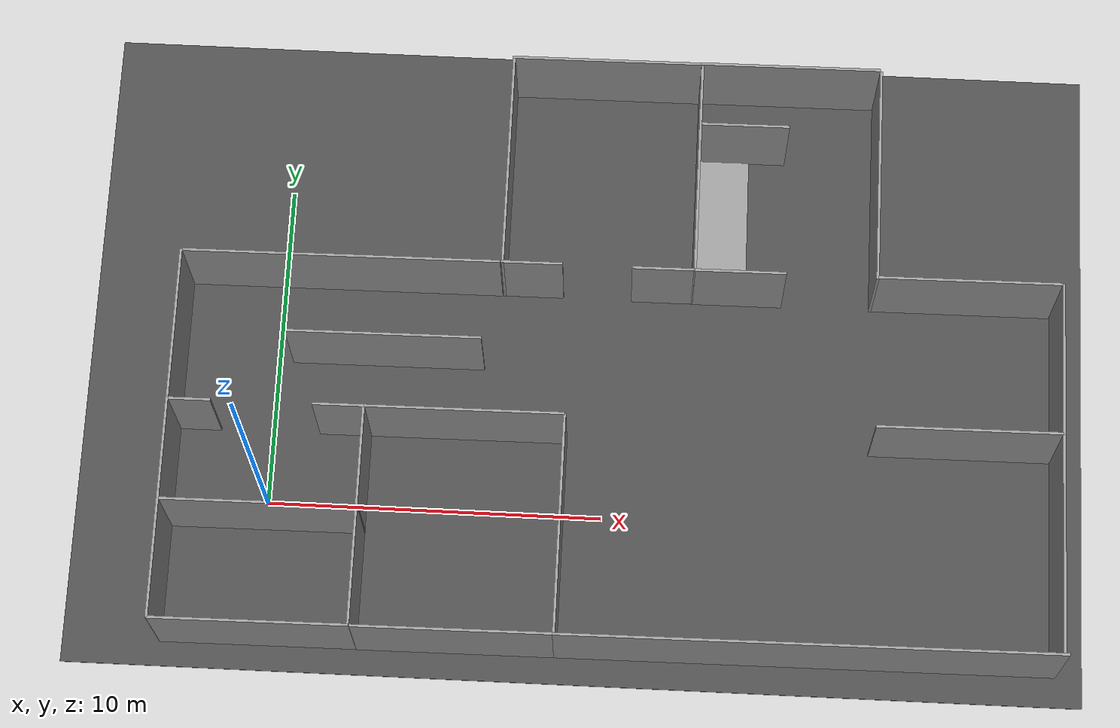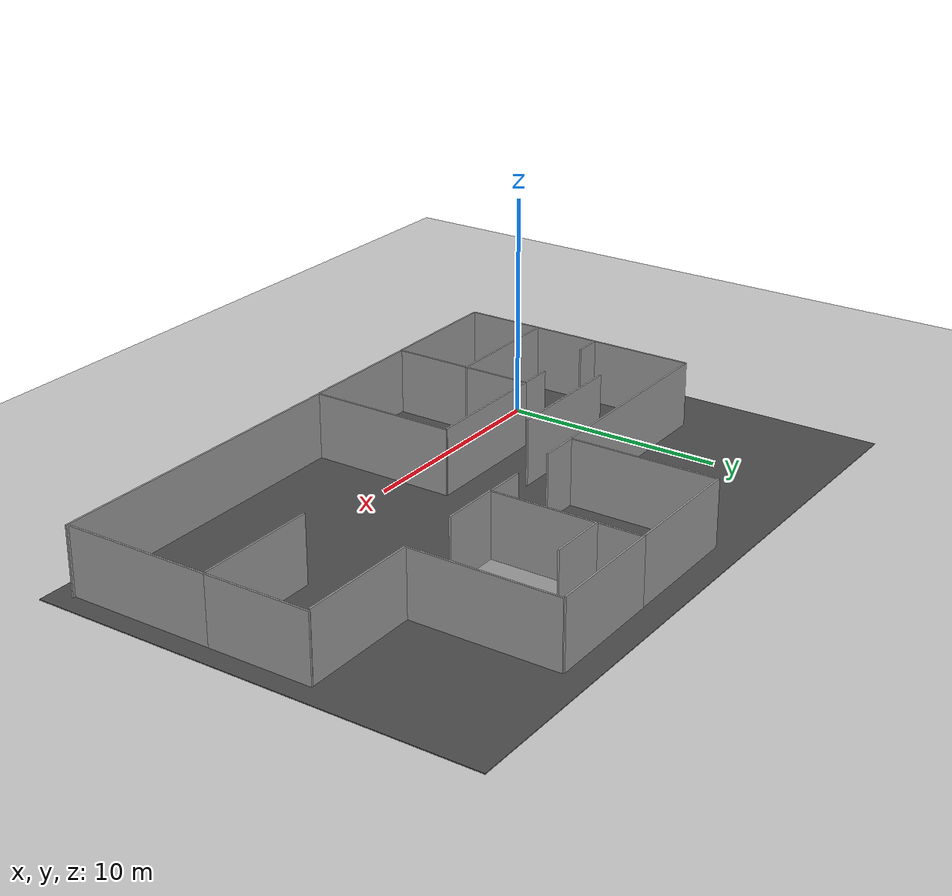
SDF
<sdf version="1.7">
 <world name="default">
  <light name="sun" type="directional">
   <pose>0 0 10 0 -0 0</pose>
   <diffuse>0.8 0.8 0.8 1</diffuse>
   <specular>0.2 0.2 0.2 1</specular>
   <attenuation>
    <range>1000</range>
    <constant>0.9</constant>
    <linear>0.01</linear>
    <quadratic>0.001</quadratic>
   </attenuation>
   <direction>-0.5 0.1 -0.9</direction>
   <spot><inner_angle>0</inner_angle><outer_angle>0</outer_angle><falloff>0</falloff></spot>
  </light>
  <model name="ground_plane">
   <static>1</static>
   <link name="link">
    <collision name="collision">
     <geometry><plane><normal>0 0 1</normal><size>100 100</size></plane></geometry>
     <surface><friction><ode><mu>100</mu><mu2>50</mu2></ode></friction></surface>
    </collision>
    <visual name="visual">
     <cast_shadows>0</cast_shadows>
     <geometry><plane><normal>0 0 1</normal><size>100 100</size></plane></geometry>
     <material>
      <script><uri>file://media/materials/scripts/gazebo.material</uri><name>Gazebo/Grey</name></script>
     </material>
    </visual>
   </link>
  </model>
  <gravity>0 0 -9.8</gravity>
  <magnetic_field>6e-06 2.3e-05 -4.2e-05</magnetic_field>
  <atmosphere type="adiabatic"/>
  <physics type="ode">
   <max_step_size>0.001</max_step_size>
   <real_time_factor>1</real_time_factor>
   <real_time_update_rate>1000</real_time_update_rate>
  </physics>
  <scene><ambient>0.4 0.4 0.4 1</ambient><background>0.7 0.7 0.7 1</background><shadows>1</shadows></scene>
  <audio><device>default</device></audio>
  <spherical_coordinates>
   <surface_model>EARTH_WGS84</surface_model>
   <latitude_deg>0</latitude_deg>
   <longitude_deg>0</longitude_deg>
   <elevation>0</elevation>
   <heading_deg>0</heading_deg>
  </spherical_coordinates>
  <model name="asphalt_plane">
   <static>1</static>
   <link name="link">
    <collision name="collision"><geometry><box><size>0 0 0.1</size></box></geometry></collision>
    <visual name="visual">
     <cast_shadows>0</cast_shadows>
     <geometry><box><size>0 0 0.1</size></box></geometry>
     <material>
      <script>
       <uri>model://asphalt_plane/materials/scripts</uri>
       <uri>model://asphalt_plane/materials/textures</uri>
       <name>vrc/asphalt</name>
      </script>
     </material>
    </visual>
   </link>
   <pose>2.95258 9.97724 0 0 -0 0</pose>
  </model>
  <model name="static_wall_clone">
   <link name="link">
    <inertial>
     <mass>0.0287644</mass>
     <inertia>
      <ixx>0.0243175</ixx>
      <ixy>0</ixy>
      <ixz>0</ixz>
      <iyy>0.0523841</iyy>
      <iyz>0</iyz>
      <izz>0.0280974</izz>
     </inertia>
    </inertial>
    <visual name="visual">
     <geometry><box><size>5.83465 0.080235 3.18409</size></box></geometry>
     <material>
      <script><name>Gazebo/Grey</name><uri>file://media/materials/scripts/gazebo.material</uri></script>
      <shader type="pixel"/>
     </material>
    </visual>
    <collision name="collision">
     <geometry><box><size>5.83465 0.080235 3.18409</size></box></geometry>
     <surface>
      <friction>
       <ode><mu>1</mu><mu2>1</mu2><fdir1>0 0 0</fdir1><slip1>0</slip1><slip2>0</slip2></ode>
       <torsional>
        <coefficient>1</coefficient>
        <patch_radius>0</patch_radius>
        <surface_radius>0</surface_radius>
        <use_patch_radius>1</use_patch_radius>
        <ode><slip>0</slip></ode>
       </torsional>
      </friction>
      <bounce><restitution_coefficient>0</restitution_coefficient><threshold>1e+06</threshold></bounce>
      <contact>
       <collide_without_contact>0</collide_without_contact>
       <collide_without_contact_bitmask>1</collide_without_contact_bitmask>
       <collide_bitmask>1</collide_bitmask>
       <ode>
        <soft_cfm>0</soft_cfm>
        <soft_erp>0.2</soft_erp>
        <kp>1e+13</kp>
        <kd>1</kd>
        <max_vel>0.01</max_vel>
        <min_depth>0</min_depth>
       </ode>
       <bullet>
        <split_impulse>1</split_impulse>
        <split_impulse_penetration_threshold>-0.01</split_impulse_penetration_threshold>
        <soft_cfm>0</soft_cfm>
        <soft_erp>0.2</soft_erp>
        <kp>1e+13</kp>
        <kd>1</kd>
       </bullet>
      </contact>
     </surface>
    </collision>
   </link>
   <static>1</static>
   <allow_auto_disable>0</allow_auto_disable>
   <pose>0.036909 -4.31223 1.39511 -4.4e-05 -0.003033 0.006169</pose>
  </model>
  <model name="static_wall_clone_1">
   <link name="link">
    <inertial>
     <mass>0.0287644</mass>
     <inertia>
      <ixx>0.0243175</ixx>
      <ixy>0</ixy>
      <ixz>0</ixz>
      <iyy>0.0523841</iyy>
      <iyz>0</iyz>
      <izz>0.0280974</izz>
     </inertia>
    </inertial>
    <visual name="visual">
     <geometry><box><size>6.64477 0.080235 3.18409</size></box></geometry>
     <material>
      <script><name>Gazebo/Grey</name><uri>file://media/materials/scripts/gazebo.material</uri></script>
      <shader type="pixel"/>
     </material>
    </visual>
    <collision name="collision">
     <geometry><box><size>6.64477 0.080235 3.18409</size></box></geometry>
     <surface>
      <friction>
       <ode><mu>1</mu><mu2>1</mu2><fdir1>0 0 0</fdir1><slip1>0</slip1><slip2>0</slip2></ode>
       <torsional>
        <coefficient>1</coefficient>
        <patch_radius>0</patch_radius>
        <surface_radius>0</surface_radius>
        <use_patch_radius>1</use_patch_radius>
        <ode><slip>0</slip></ode>
       </torsional>
      </friction>
      <bounce><restitution_coefficient>0</restitution_coefficient><threshold>1e+06</threshold></bounce>
      <contact>
       <collide_without_contact>0</collide_without_contact>
       <collide_without_contact_bitmask>1</collide_without_contact_bitmask>
       <collide_bitmask>1</collide_bitmask>
       <ode>
        <soft_cfm>0</soft_cfm>
        <soft_erp>0.2</soft_erp>
        <kp>1e+13</kp>
        <kd>1</kd>
        <max_vel>0.01</max_vel>
        <min_depth>0</min_depth>
       </ode>
       <bullet>
        <split_impulse>1</split_impulse>
        <split_impulse_penetration_threshold>-0.01</split_impulse_penetration_threshold>
        <soft_cfm>0</soft_cfm>
        <soft_erp>0.2</soft_erp>
        <kp>1e+13</kp>
        <kd>1</kd>
       </bullet>
      </contact>
     </surface>
    </collision>
   </link>
   <static>1</static>
   <allow_auto_disable>0</allow_auto_disable>
   <pose>-2.87569 -1.01543 1.38713 0.003033 -3e-05 -1.56934</pose>
  </model>
  <model name="static_wall_clone_2">
   <link name="link">
    <inertial>
     <mass>0.0287644</mass>
     <inertia>
      <ixx>0.0243175</ixx>
      <ixy>0</ixy>
      <ixz>0</ixz>
      <iyy>0.0523841</iyy>
      <iyz>0</iyz>
      <izz>0.0280974</izz>
     </inertia>
    </inertial>
    <visual name="visual">
     <geometry><box><size>1.53 0.080235 3.18409</size></box></geometry>
     <material>
      <script><name>Gazebo/Grey</name><uri>file://media/materials/scripts/gazebo.material</uri></script>
      <shader type="pixel"/>
     </material>
    </visual>
    <collision name="collision">
     <geometry><box><size>1.53 0.080235 3.18409</size></box></geometry>
     <surface>
      <friction>
       <ode><mu>1</mu><mu2>1</mu2><fdir1>0 0 0</fdir1><slip1>0</slip1><slip2>0</slip2></ode>
       <torsional>
        <coefficient>1</coefficient>
        <patch_radius>0</patch_radius>
        <surface_radius>0</surface_radius>
        <use_patch_radius>1</use_patch_radius>
        <ode><slip>0</slip></ode>
       </torsional>
      </friction>
      <bounce><restitution_coefficient>0</restitution_coefficient><threshold>1e+06</threshold></bounce>
      <contact>
       <collide_without_contact>0</collide_without_contact>
       <collide_without_contact_bitmask>1</collide_without_contact_bitmask>
       <collide_bitmask>1</collide_bitmask>
       <ode>
        <soft_cfm>0</soft_cfm>
        <soft_erp>0.2</soft_erp>
        <kp>1e+13</kp>
        <kd>1</kd>
        <max_vel>0.01</max_vel>
        <min_depth>0</min_depth>
       </ode>
       <bullet>
        <split_impulse>1</split_impulse>
        <split_impulse_penetration_threshold>-0.01</split_impulse_penetration_threshold>
        <soft_cfm>0</soft_cfm>
        <soft_erp>0.2</soft_erp>
        <kp>1e+13</kp>
        <kd>1</kd>
       </bullet>
      </contact>
     </surface>
    </collision>
   </link>
   <static>1</static>
   <allow_auto_disable>0</allow_auto_disable>
   <pose>2.15598 2.31066 1.39012 -4.4e-05 -0.003033 0.006169</pose>
  </model>
  <model name="static_wall_clone_1_clone_clone">
   <link name="link">
    <inertial>
     <mass>0.0287644</mass>
     <inertia>
      <ixx>0.0243175</ixx>
      <ixy>0</ixy>
      <ixz>0</ixz>
      <iyy>0.0523841</iyy>
      <iyz>0</iyz>
      <izz>0.0280974</izz>
     </inertia>
    </inertial>
    <visual name="visual">
     <geometry><box><size>6.63015 0.080235 3.18409</size></box></geometry>
     <material>
      <script><name>Gazebo/Grey</name><uri>file://media/materials/scripts/gazebo.material</uri></script>
      <shader type="pixel"/>
     </material>
    </visual>
    <collision name="collision">
     <geometry><box><size>6.63015 0.080235 3.18409</size></box></geometry>
     <surface>
      <friction>
       <ode><mu>1</mu><mu2>1</mu2><fdir1>0 0 0</fdir1><slip1>0</slip1><slip2>0</slip2></ode>
       <torsional>
        <coefficient>1</coefficient>
        <patch_radius>0</patch_radius>
        <surface_radius>0</surface_radius>
        <use_patch_radius>1</use_patch_radius>
        <ode><slip>0</slip></ode>
       </torsional>
      </friction>
      <bounce><restitution_coefficient>0</restitution_coefficient><threshold>1e+06</threshold></bounce>
      <contact>
       <collide_without_contact>0</collide_without_contact>
       <collide_without_contact_bitmask>1</collide_without_contact_bitmask>
       <collide_bitmask>1</collide_bitmask>
       <ode>
        <soft_cfm>0</soft_cfm>
        <soft_erp>0.2</soft_erp>
        <kp>1e+13</kp>
        <kd>1</kd>
        <max_vel>0.01</max_vel>
        <min_depth>0</min_depth>
       </ode>
       <bullet>
        <split_impulse>1</split_impulse>
        <split_impulse_penetration_threshold>-0.01</split_impulse_penetration_threshold>
        <soft_cfm>0</soft_cfm>
        <soft_erp>0.2</soft_erp>
        <kp>1e+13</kp>
        <kd>1</kd>
       </bullet>
      </contact>
     </surface>
    </collision>
   </link>
   <static>1</static>
   <allow_auto_disable>0</allow_auto_disable>
   <pose>8.83879 -0.960388 1.3839 0.003033 -3e-05 -1.56934</pose>
  </model>
  <model name="static_wall_clone_clone">
   <link name="link">
    <inertial>
     <mass>0.0287644</mass>
     <inertia>
      <ixx>0.0243175</ixx>
      <ixy>0</ixy>
      <ixz>0</ixz>
      <iyy>0.0523841</iyy>
      <iyz>0</iyz>
      <izz>0.0280974</izz>
     </inertia>
    </inertial>
    <visual name="visual">
     <geometry><box><size>5.84478 0.080235 3.18409</size></box></geometry>
     <material>
      <script><name>Gazebo/Grey</name><uri>file://media/materials/scripts/gazebo.material</uri></script>
      <shader type="pixel"/>
     </material>
    </visual>
    <collision name="collision">
     <geometry><box><size>5.84478 0.080235 3.18409</size></box></geometry>
     <surface>
      <friction>
       <ode><mu>1</mu><mu2>1</mu2><fdir1>0 0 0</fdir1><slip1>0</slip1><slip2>0</slip2></ode>
       <torsional>
        <coefficient>1</coefficient>
        <patch_radius>0</patch_radius>
        <surface_radius>0</surface_radius>
        <use_patch_radius>1</use_patch_radius>
        <ode><slip>0</slip></ode>
       </torsional>
      </friction>
      <bounce><restitution_coefficient>0</restitution_coefficient><threshold>1e+06</threshold></bounce>
      <contact>
       <collide_without_contact>0</collide_without_contact>
       <collide_without_contact_bitmask>1</collide_without_contact_bitmask>
       <collide_bitmask>1</collide_bitmask>
       <ode>
        <soft_cfm>0</soft_cfm>
        <soft_erp>0.2</soft_erp>
        <kp>1e+13</kp>
        <kd>1</kd>
        <max_vel>0.01</max_vel>
        <min_depth>0</min_depth>
       </ode>
       <bullet>
        <split_impulse>1</split_impulse>
        <split_impulse_penetration_threshold>-0.01</split_impulse_penetration_threshold>
        <soft_cfm>0</soft_cfm>
        <soft_erp>0.2</soft_erp>
        <kp>1e+13</kp>
        <kd>1</kd>
       </bullet>
      </contact>
     </surface>
    </collision>
   </link>
   <static>1</static>
   <allow_auto_disable>0</allow_auto_disable>
   <pose>5.8848 -4.2826 1.39511 -4.4e-05 -0.003033 0.006169</pose>
  </model>
  <model name="static_wall_clone_clone_clone">
   <link name="link">
    <inertial>
     <mass>0.0287644</mass>
     <inertia>
      <ixx>0.0243175</ixx>
      <ixy>0</ixy>
      <ixz>0</ixz>
      <iyy>0.0523841</iyy>
      <iyz>0</iyz>
      <izz>0.0280974</izz>
     </inertia>
    </inertial>
    <visual name="visual">
     <geometry><box><size>5.91305 0.080235 3.18409</size></box></geometry>
     <material>
      <script><name>Gazebo/Grey</name><uri>file://media/materials/scripts/gazebo.material</uri></script>
      <shader type="pixel"/>
     </material>
    </visual>
    <collision name="collision">
     <geometry><box><size>5.91305 0.080235 3.18409</size></box></geometry>
     <surface>
      <friction>
       <ode><mu>1</mu><mu2>1</mu2><fdir1>0 0 0</fdir1><slip1>0</slip1><slip2>0</slip2></ode>
       <torsional>
        <coefficient>1</coefficient>
        <patch_radius>0</patch_radius>
        <surface_radius>0</surface_radius>
        <use_patch_radius>1</use_patch_radius>
        <ode><slip>0</slip></ode>
       </torsional>
      </friction>
      <bounce><restitution_coefficient>0</restitution_coefficient><threshold>1e+06</threshold></bounce>
      <contact>
       <collide_without_contact>0</collide_without_contact>
       <collide_without_contact_bitmask>1</collide_without_contact_bitmask>
       <collide_bitmask>1</collide_bitmask>
       <ode>
        <soft_cfm>0</soft_cfm>
        <soft_erp>0.2</soft_erp>
        <kp>1e+13</kp>
        <kd>1</kd>
        <max_vel>0.01</max_vel>
        <min_depth>0</min_depth>
       </ode>
       <bullet>
        <split_impulse>1</split_impulse>
        <split_impulse_penetration_threshold>-0.01</split_impulse_penetration_threshold>
        <soft_cfm>0</soft_cfm>
        <soft_erp>0.2</soft_erp>
        <kp>1e+13</kp>
        <kd>1</kd>
       </bullet>
      </contact>
     </surface>
    </collision>
   </link>
   <static>1</static>
   <allow_auto_disable>0</allow_auto_disable>
   <pose>5.87737 2.33463 1.39501 -4.4e-05 -0.003033 0.006169</pose>
  </model>
  <model name="static_wall_clone_clone_clone_0">
   <link name="link">
    <inertial>
     <mass>0.0287644</mass>
     <inertia>
      <ixx>0.0243175</ixx>
      <ixy>0</ixy>
      <ixz>0</ixz>
      <iyy>0.0523841</iyy>
      <iyz>0</iyz>
      <izz>0.0280974</izz>
     </inertia>
    </inertial>
    <visual name="visual">
     <geometry><box><size>14.8291 0.080235 3.18409</size></box></geometry>
     <material>
      <script><name>Gazebo/Grey</name><uri>file://media/materials/scripts/gazebo.material</uri></script>
      <shader type="pixel"/>
     </material>
    </visual>
    <collision name="collision">
     <geometry><box><size>14.8291 0.080235 3.18409</size></box></geometry>
     <surface>
      <friction>
       <ode><mu>1</mu><mu2>1</mu2><fdir1>0 0 0</fdir1><slip1>0</slip1><slip2>0</slip2></ode>
       <torsional>
        <coefficient>1</coefficient>
        <patch_radius>0</patch_radius>
        <surface_radius>0</surface_radius>
        <use_patch_radius>1</use_patch_radius>
        <ode><slip>0</slip></ode>
       </torsional>
      </friction>
      <bounce><restitution_coefficient>0</restitution_coefficient><threshold>1e+06</threshold></bounce>
      <contact>
       <collide_without_contact>0</collide_without_contact>
       <collide_without_contact_bitmask>1</collide_without_contact_bitmask>
       <collide_bitmask>1</collide_bitmask>
       <ode>
        <soft_cfm>0</soft_cfm>
        <soft_erp>0.2</soft_erp>
        <kp>1e+13</kp>
        <kd>1</kd>
        <max_vel>0.01</max_vel>
        <min_depth>0</min_depth>
       </ode>
       <bullet>
        <split_impulse>1</split_impulse>
        <split_impulse_penetration_threshold>-0.01</split_impulse_penetration_threshold>
        <soft_cfm>0</soft_cfm>
        <soft_erp>0.2</soft_erp>
        <kp>1e+13</kp>
        <kd>1</kd>
       </bullet>
      </contact>
     </surface>
    </collision>
   </link>
   <static>1</static>
   <allow_auto_disable>0</allow_auto_disable>
   <pose>16.2201 -4.2176 1.40864 -4.4e-05 -0.003033 0.006169</pose>
  </model>
  <model name="static_wall_clone_1_clone_clone_clone">
   <link name="link">
    <inertial>
     <mass>0.0287644</mass>
     <inertia>
      <ixx>0.0243175</ixx>
      <ixy>0</ixy>
      <ixz>0</ixz>
      <iyy>0.0523841</iyy>
      <iyz>0</iyz>
      <izz>0.0280974</izz>
     </inertia>
    </inertial>
    <visual name="visual">
     <geometry><box><size>6.60868 0.080235 3.18409</size></box></geometry>
     <material>
      <script><name>Gazebo/Grey</name><uri>file://media/materials/scripts/gazebo.material</uri></script>
      <shader type="pixel"/>
     </material>
    </visual>
    <collision name="collision">
     <geometry><box><size>6.60868 0.080235 3.18409</size></box></geometry>
     <surface>
      <friction>
       <ode><mu>1</mu><mu2>1</mu2><fdir1>0 0 0</fdir1><slip1>0</slip1><slip2>0</slip2></ode>
       <torsional>
        <coefficient>1</coefficient>
        <patch_radius>0</patch_radius>
        <surface_radius>0</surface_radius>
        <use_patch_radius>1</use_patch_radius>
        <ode><slip>0</slip></ode>
       </torsional>
      </friction>
      <bounce><restitution_coefficient>0</restitution_coefficient><threshold>1e+06</threshold></bounce>
      <contact>
       <collide_without_contact>0</collide_without_contact>
       <collide_without_contact_bitmask>1</collide_without_contact_bitmask>
       <collide_bitmask>1</collide_bitmask>
       <ode>
        <soft_cfm>0</soft_cfm>
        <soft_erp>0.2</soft_erp>
        <kp>1e+13</kp>
        <kd>1</kd>
        <max_vel>0.01</max_vel>
        <min_depth>0</min_depth>
       </ode>
       <bullet>
        <split_impulse>1</split_impulse>
        <split_impulse_penetration_threshold>-0.01</split_impulse_penetration_threshold>
        <soft_cfm>0</soft_cfm>
        <soft_erp>0.2</soft_erp>
        <kp>1e+13</kp>
        <kd>1</kd>
       </bullet>
      </contact>
     </surface>
    </collision>
   </link>
   <static>1</static>
   <allow_auto_disable>0</allow_auto_disable>
   <pose>23.4956 -0.886879 1.3839 0.003033 -3e-05 -1.56934</pose>
  </model>
  <model name="static_wall_clone_1_clone_clone_clone_clone">
   <link name="link">
    <inertial>
     <mass>0.0287644</mass>
     <inertia>
      <ixx>0.0243175</ixx>
      <ixy>0</ixy>
      <ixz>0</ixz>
      <iyy>0.0523841</iyy>
      <iyz>0</iyz>
      <izz>0.0280974</izz>
     </inertia>
    </inertial>
    <visual name="visual">
     <geometry><box><size>4.69181 0.080235 3.18409</size></box></geometry>
     <material>
      <script><name>Gazebo/Grey</name><uri>file://media/materials/scripts/gazebo.material</uri></script>
      <shader type="pixel"/>
     </material>
    </visual>
    <collision name="collision">
     <geometry><box><size>4.69181 0.080235 3.18409</size></box></geometry>
     <surface>
      <friction>
       <ode><mu>1</mu><mu2>1</mu2><fdir1>0 0 0</fdir1><slip1>0</slip1><slip2>0</slip2></ode>
       <torsional>
        <coefficient>1</coefficient>
        <patch_radius>0</patch_radius>
        <surface_radius>0</surface_radius>
        <use_patch_radius>1</use_patch_radius>
        <ode><slip>0</slip></ode>
       </torsional>
      </friction>
      <bounce><restitution_coefficient>0</restitution_coefficient><threshold>1e+06</threshold></bounce>
      <contact>
       <collide_without_contact>0</collide_without_contact>
       <collide_without_contact_bitmask>1</collide_without_contact_bitmask>
       <collide_bitmask>1</collide_bitmask>
       <ode>
        <soft_cfm>0</soft_cfm>
        <soft_erp>0.2</soft_erp>
        <kp>1e+13</kp>
        <kd>1</kd>
        <max_vel>0.01</max_vel>
        <min_depth>0</min_depth>
       </ode>
       <bullet>
        <split_impulse>1</split_impulse>
        <split_impulse_penetration_threshold>-0.01</split_impulse_penetration_threshold>
        <soft_cfm>0</soft_cfm>
        <soft_erp>0.2</soft_erp>
        <kp>1e+13</kp>
        <kd>1</kd>
       </bullet>
      </contact>
     </surface>
    </collision>
   </link>
   <static>1</static>
   <allow_auto_disable>0</allow_auto_disable>
   <pose>23.4887 4.75595 1.38387 0.003033 -3e-05 -1.56934</pose>
  </model>
  <model name="static_wall_clone_clone_clone_0_clone">
   <link name="link">
    <inertial>
     <mass>0.0287644</mass>
     <inertia>
      <ixx>0.0243175</ixx>
      <ixy>0</ixy>
      <ixz>0</ixz>
      <iyy>0.0523841</iyy>
      <iyz>0</iyz>
      <izz>0.0280974</izz>
     </inertia>
    </inertial>
    <visual name="visual">
     <geometry><box><size>5.48498 0.080235 3.18409</size></box></geometry>
     <material>
      <script><name>Gazebo/Grey</name><uri>file://media/materials/scripts/gazebo.material</uri></script>
      <shader type="pixel"/>
     </material>
    </visual>
    <collision name="collision">
     <geometry><box><size>5.48498 0.080235 3.18409</size></box></geometry>
     <surface>
      <friction>
       <ode><mu>1</mu><mu2>1</mu2><fdir1>0 0 0</fdir1><slip1>0</slip1><slip2>0</slip2></ode>
       <torsional>
        <coefficient>1</coefficient>
        <patch_radius>0</patch_radius>
        <surface_radius>0</surface_radius>
        <use_patch_radius>1</use_patch_radius>
        <ode><slip>0</slip></ode>
       </torsional>
      </friction>
      <bounce><restitution_coefficient>0</restitution_coefficient><threshold>1e+06</threshold></bounce>
      <contact>
       <collide_without_contact>0</collide_without_contact>
       <collide_without_contact_bitmask>1</collide_without_contact_bitmask>
       <collide_bitmask>1</collide_bitmask>
       <ode>
        <soft_cfm>0</soft_cfm>
        <soft_erp>0.2</soft_erp>
        <kp>1e+13</kp>
        <kd>1</kd>
        <max_vel>0.01</max_vel>
        <min_depth>0</min_depth>
       </ode>
       <bullet>
        <split_impulse>1</split_impulse>
        <split_impulse_penetration_threshold>-0.01</split_impulse_penetration_threshold>
        <soft_cfm>0</soft_cfm>
        <soft_erp>0.2</soft_erp>
        <kp>1e+13</kp>
        <kd>1</kd>
       </bullet>
      </contact>
     </surface>
    </collision>
   </link>
   <static>1</static>
   <allow_auto_disable>0</allow_auto_disable>
   <pose>20.7214 2.40977 1.42233 -4.4e-05 -0.003033 0.006169</pose>
  </model>
  <model name="static_wall_clone_clone_clone_0_clone_clone">
   <link name="link">
    <inertial>
     <mass>0.0287644</mass>
     <inertia>
      <ixx>0.0243175</ixx>
      <ixy>0</ixy>
      <ixz>0</ixz>
      <iyy>0.0523841</iyy>
      <iyz>0</iyz>
      <izz>0.0280974</izz>
     </inertia>
    </inertial>
    <visual name="visual">
     <geometry><box><size>5.47773 0.080235 3.18409</size></box></geometry>
     <material>
      <script><name>Gazebo/Grey</name><uri>file://media/materials/scripts/gazebo.material</uri></script>
      <shader type="pixel"/>
     </material>
    </visual>
    <collision name="collision">
     <geometry><box><size>5.47773 0.080235 3.18409</size></box></geometry>
     <surface>
      <friction>
       <ode><mu>1</mu><mu2>1</mu2><fdir1>0 0 0</fdir1><slip1>0</slip1><slip2>0</slip2></ode>
       <torsional>
        <coefficient>1</coefficient>
        <patch_radius>0</patch_radius>
        <surface_radius>0</surface_radius>
        <use_patch_radius>1</use_patch_radius>
        <ode><slip>0</slip></ode>
       </torsional>
      </friction>
      <bounce><restitution_coefficient>0</restitution_coefficient><threshold>1e+06</threshold></bounce>
      <contact>
       <collide_without_contact>0</collide_without_contact>
       <collide_without_contact_bitmask>1</collide_without_contact_bitmask>
       <collide_bitmask>1</collide_bitmask>
       <ode>
        <soft_cfm>0</soft_cfm>
        <soft_erp>0.2</soft_erp>
        <kp>1e+13</kp>
        <kd>1</kd>
        <max_vel>0.01</max_vel>
        <min_depth>0</min_depth>
       </ode>
       <bullet>
        <split_impulse>1</split_impulse>
        <split_impulse_penetration_threshold>-0.01</split_impulse_penetration_threshold>
        <soft_cfm>0</soft_cfm>
        <soft_erp>0.2</soft_erp>
        <kp>1e+13</kp>
        <kd>1</kd>
       </bullet>
      </contact>
     </surface>
    </collision>
   </link>
   <static>1</static>
   <allow_auto_disable>0</allow_auto_disable>
   <pose>20.6972 7.05358 1.42222 -4.4e-05 -0.003033 0.006169</pose>
  </model>
  <model name="static_wall_clone_1_clone_clone_clone_0">
   <link name="link">
    <inertial>
     <mass>0.0287644</mass>
     <inertia>
      <ixx>0.0243175</ixx>
      <ixy>0</ixy>
      <ixz>0</ixz>
      <iyy>0.0523841</iyy>
      <iyz>0</iyz>
      <izz>0.0280974</izz>
     </inertia>
    </inertial>
    <visual name="visual">
     <geometry><box><size>6.56476 0.080235 3.18409</size></box></geometry>
     <material>
      <script><name>Gazebo/Grey</name><uri>file://media/materials/scripts/gazebo.material</uri></script>
      <shader type="pixel"/>
     </material>
    </visual>
    <collision name="collision">
     <geometry><box><size>6.56476 0.080235 3.18409</size></box></geometry>
     <surface>
      <friction>
       <ode><mu>1</mu><mu2>1</mu2><fdir1>0 0 0</fdir1><slip1>0</slip1><slip2>0</slip2></ode>
       <torsional>
        <coefficient>1</coefficient>
        <patch_radius>0</patch_radius>
        <surface_radius>0</surface_radius>
        <use_patch_radius>1</use_patch_radius>
        <ode><slip>0</slip></ode>
       </torsional>
      </friction>
      <bounce><restitution_coefficient>0</restitution_coefficient><threshold>1e+06</threshold></bounce>
      <contact>
       <collide_without_contact>0</collide_without_contact>
       <collide_without_contact_bitmask>1</collide_without_contact_bitmask>
       <collide_bitmask>1</collide_bitmask>
       <ode>
        <soft_cfm>0</soft_cfm>
        <soft_erp>0.2</soft_erp>
        <kp>1e+13</kp>
        <kd>1</kd>
        <max_vel>0.01</max_vel>
        <min_depth>0</min_depth>
       </ode>
       <bullet>
        <split_impulse>1</split_impulse>
        <split_impulse_penetration_threshold>-0.01</split_impulse_penetration_threshold>
        <soft_cfm>0</soft_cfm>
        <soft_erp>0.2</soft_erp>
        <kp>1e+13</kp>
        <kd>1</kd>
       </bullet>
      </contact>
     </surface>
    </collision>
   </link>
   <static>1</static>
   <allow_auto_disable>0</allow_auto_disable>
   <pose>2.91831 -1.01242 1.3839 0.003033 -3e-05 -1.56934</pose>
  </model>
  <model name="static_wall_clone_1_clone_clone_clone_0_clone">
   <link name="link">
    <inertial>
     <mass>0.0287644</mass>
     <inertia>
      <ixx>0.0243175</ixx>
      <ixy>0</ixy>
      <ixz>0</ixz>
      <iyy>0.0523841</iyy>
      <iyz>0</iyz>
      <izz>0.0280974</izz>
     </inertia>
    </inertial>
    <visual name="visual">
     <geometry><box><size>6.71957 0.080235 3.18409</size></box></geometry>
     <material>
      <script><name>Gazebo/Grey</name><uri>file://media/materials/scripts/gazebo.material</uri></script>
      <shader type="pixel"/>
     </material>
    </visual>
    <collision name="collision">
     <geometry><box><size>6.71957 0.080235 3.18409</size></box></geometry>
     <surface>
      <friction>
       <ode><mu>1</mu><mu2>1</mu2><fdir1>0 0 0</fdir1><slip1>0</slip1><slip2>0</slip2></ode>
       <torsional>
        <coefficient>1</coefficient>
        <patch_radius>0</patch_radius>
        <surface_radius>0</surface_radius>
        <use_patch_radius>1</use_patch_radius>
        <ode><slip>0</slip></ode>
       </torsional>
      </friction>
      <bounce><restitution_coefficient>0</restitution_coefficient><threshold>1e+06</threshold></bounce>
      <contact>
       <collide_without_contact>0</collide_without_contact>
       <collide_without_contact_bitmask>1</collide_without_contact_bitmask>
       <collide_bitmask>1</collide_bitmask>
       <ode>
        <soft_cfm>0</soft_cfm>
        <soft_erp>0.2</soft_erp>
        <kp>1e+13</kp>
        <kd>1</kd>
        <max_vel>0.01</max_vel>
        <min_depth>0</min_depth>
       </ode>
       <bullet>
        <split_impulse>1</split_impulse>
        <split_impulse_penetration_threshold>-0.01</split_impulse_penetration_threshold>
        <soft_cfm>0</soft_cfm>
        <soft_erp>0.2</soft_erp>
        <kp>1e+13</kp>
        <kd>1</kd>
       </bullet>
      </contact>
     </surface>
    </collision>
   </link>
   <static>1</static>
   <allow_auto_disable>0</allow_auto_disable>
   <pose>17.9407 10.3479 1.3839 0.003033 -3e-05 -1.56934</pose>
  </model>
  <model name="static_wall_clone_clone_clone_0_clone_clone_clone">
   <link name="link">
    <inertial>
     <mass>0.0287644</mass>
     <inertia>
      <ixx>0.0243175</ixx>
      <ixy>0</ixy>
      <ixz>0</ixz>
      <iyy>0.0523841</iyy>
      <iyz>0</iyz>
      <izz>0.0280974</izz>
     </inertia>
    </inertial>
    <visual name="visual">
     <geometry><box><size>5.47773 0.080235 3.18409</size></box></geometry>
     <material>
      <script><name>Gazebo/Grey</name><uri>file://media/materials/scripts/gazebo.material</uri></script>
      <shader type="pixel"/>
     </material>
    </visual>
    <collision name="collision">
     <geometry><box><size>5.47773 0.080235 3.18409</size></box></geometry>
     <surface>
      <friction>
       <ode><mu>1</mu><mu2>1</mu2><fdir1>0 0 0</fdir1><slip1>0</slip1><slip2>0</slip2></ode>
       <torsional>
        <coefficient>1</coefficient>
        <patch_radius>0</patch_radius>
        <surface_radius>0</surface_radius>
        <use_patch_radius>1</use_patch_radius>
        <ode><slip>0</slip></ode>
       </torsional>
      </friction>
      <bounce><restitution_coefficient>0</restitution_coefficient><threshold>1e+06</threshold></bounce>
      <contact>
       <collide_without_contact>0</collide_without_contact>
       <collide_without_contact_bitmask>1</collide_without_contact_bitmask>
       <collide_bitmask>1</collide_bitmask>
       <ode>
        <soft_cfm>0</soft_cfm>
        <soft_erp>0.2</soft_erp>
        <kp>1e+13</kp>
        <kd>1</kd>
        <max_vel>0.01</max_vel>
        <min_depth>0</min_depth>
       </ode>
       <bullet>
        <split_impulse>1</split_impulse>
        <split_impulse_penetration_threshold>-0.01</split_impulse_penetration_threshold>
        <soft_cfm>0</soft_cfm>
        <soft_erp>0.2</soft_erp>
        <kp>1e+13</kp>
        <kd>1</kd>
       </bullet>
      </contact>
     </surface>
    </collision>
   </link>
   <static>1</static>
   <allow_auto_disable>0</allow_auto_disable>
   <pose>15.1738 13.72 1.42222 -4.4e-05 -0.003033 0.006169</pose>
  </model>
  <model name="static_wall_clone_1_clone_clone_clone_0_clone_clone">
   <link name="link">
    <inertial>
     <mass>0.0287644</mass>
     <inertia>
      <ixx>0.0243175</ixx>
      <ixy>0</ixy>
      <ixz>0</ixz>
      <iyy>0.0523841</iyy>
      <iyz>0</iyz>
      <izz>0.0280974</izz>
     </inertia>
    </inertial>
    <visual name="visual">
     <geometry><box><size>6.71957 0.080235 3.18409</size></box></geometry>
     <material>
      <script><name>Gazebo/Grey</name><uri>file://media/materials/scripts/gazebo.material</uri></script>
      <shader type="pixel"/>
     </material>
    </visual>
    <collision name="collision">
     <geometry><box><size>6.71957 0.080235 3.18409</size></box></geometry>
     <surface>
      <friction>
       <ode><mu>1</mu><mu2>1</mu2><fdir1>0 0 0</fdir1><slip1>0</slip1><slip2>0</slip2></ode>
       <torsional>
        <coefficient>1</coefficient>
        <patch_radius>0</patch_radius>
        <surface_radius>0</surface_radius>
        <use_patch_radius>1</use_patch_radius>
        <ode><slip>0</slip></ode>
       </torsional>
      </friction>
      <bounce><restitution_coefficient>0</restitution_coefficient><threshold>1e+06</threshold></bounce>
      <contact>
       <collide_without_contact>0</collide_without_contact>
       <collide_without_contact_bitmask>1</collide_without_contact_bitmask>
       <collide_bitmask>1</collide_bitmask>
       <ode>
        <soft_cfm>0</soft_cfm>
        <soft_erp>0.2</soft_erp>
        <kp>1e+13</kp>
        <kd>1</kd>
        <max_vel>0.01</max_vel>
        <min_depth>0</min_depth>
       </ode>
       <bullet>
        <split_impulse>1</split_impulse>
        <split_impulse_penetration_threshold>-0.01</split_impulse_penetration_threshold>
        <soft_cfm>0</soft_cfm>
        <soft_erp>0.2</soft_erp>
        <kp>1e+13</kp>
        <kd>1</kd>
       </bullet>
      </contact>
     </surface>
    </collision>
   </link>
   <static>1</static>
   <allow_auto_disable>0</allow_auto_disable>
   <pose>12.4903 10.3361 1.3839 0.003033 -3e-05 -1.56934</pose>
  </model>
  <model name="static_wall_clone_clone_clone_0_clone_clone_clone_clone">
   <link name="link">
    <inertial>
     <mass>0.0287644</mass>
     <inertia>
      <ixx>0.0243175</ixx>
      <ixy>0</ixy>
      <ixz>0</ixz>
      <iyy>0.0523841</iyy>
      <iyz>0</iyz>
      <izz>0.0280974</izz>
     </inertia>
    </inertial>
    <visual name="visual">
     <geometry><box><size>2.66995 0.080235 3.18409</size></box></geometry>
     <material>
      <script><name>Gazebo/Grey</name><uri>file://media/materials/scripts/gazebo.material</uri></script>
      <shader type="pixel"/>
     </material>
    </visual>
    <collision name="collision">
     <geometry><box><size>2.66995 0.080235 3.18409</size></box></geometry>
     <surface>
      <friction>
       <ode><mu>1</mu><mu2>1</mu2><fdir1>0 0 0</fdir1><slip1>0</slip1><slip2>0</slip2></ode>
       <torsional>
        <coefficient>1</coefficient>
        <patch_radius>0</patch_radius>
        <surface_radius>0</surface_radius>
        <use_patch_radius>1</use_patch_radius>
        <ode><slip>0</slip></ode>
       </torsional>
      </friction>
      <bounce><restitution_coefficient>0</restitution_coefficient><threshold>1e+06</threshold></bounce>
      <contact>
       <collide_without_contact>0</collide_without_contact>
       <collide_without_contact_bitmask>1</collide_without_contact_bitmask>
       <collide_bitmask>1</collide_bitmask>
       <ode>
        <soft_cfm>0</soft_cfm>
        <soft_erp>0.2</soft_erp>
        <kp>1e+13</kp>
        <kd>1</kd>
        <max_vel>0.01</max_vel>
        <min_depth>0</min_depth>
       </ode>
       <bullet>
        <split_impulse>1</split_impulse>
        <split_impulse_penetration_threshold>-0.01</split_impulse_penetration_threshold>
        <soft_cfm>0</soft_cfm>
        <soft_erp>0.2</soft_erp>
        <kp>1e+13</kp>
        <kd>1</kd>
       </bullet>
      </contact>
     </surface>
    </collision>
   </link>
   <static>1</static>
   <allow_auto_disable>0</allow_auto_disable>
   <pose>13.8509 11.7325 1.42759 -4.4e-05 -0.003033 0.006169</pose>
  </model>
  <model name="static_wall_clone_clone_clone_clone_clone">
   <link name="link">
    <inertial>
     <mass>0.0287644</mass>
     <inertia>
      <ixx>0.0243175</ixx>
      <ixy>0</ixy>
      <ixz>0</ixz>
      <iyy>0.0523841</iyy>
      <iyz>0</iyz>
      <izz>0.0280974</izz>
     </inertia>
    </inertial>
    <visual name="visual">
     <geometry><box><size>9.55577 0.080235 3.18409</size></box></geometry>
     <material>
      <script><name>Gazebo/Grey</name><uri>file://media/materials/scripts/gazebo.material</uri></script>
      <shader type="pixel"/>
     </material>
    </visual>
    <collision name="collision">
     <geometry><box><size>9.55577 0.080235 3.18409</size></box></geometry>
     <surface>
      <friction>
       <ode><mu>1</mu><mu2>1</mu2><fdir1>0 0 0</fdir1><slip1>0</slip1><slip2>0</slip2></ode>
       <torsional>
        <coefficient>1</coefficient>
        <patch_radius>0</patch_radius>
        <surface_radius>0</surface_radius>
        <use_patch_radius>1</use_patch_radius>
        <ode><slip>0</slip></ode>
       </torsional>
      </friction>
      <bounce><restitution_coefficient>0</restitution_coefficient><threshold>1e+06</threshold></bounce>
      <contact>
       <collide_without_contact>0</collide_without_contact>
       <collide_without_contact_bitmask>1</collide_without_contact_bitmask>
       <collide_bitmask>1</collide_bitmask>
       <ode>
        <soft_cfm>0</soft_cfm>
        <soft_erp>0.2</soft_erp>
        <kp>1e+13</kp>
        <kd>1</kd>
        <max_vel>0.01</max_vel>
        <min_depth>0</min_depth>
       </ode>
       <bullet>
        <split_impulse>1</split_impulse>
        <split_impulse_penetration_threshold>-0.01</split_impulse_penetration_threshold>
        <soft_cfm>0</soft_cfm>
        <soft_erp>0.2</soft_erp>
        <kp>1e+13</kp>
        <kd>1</kd>
       </bullet>
      </contact>
     </surface>
    </collision>
   </link>
   <static>1</static>
   <allow_auto_disable>0</allow_auto_disable>
   <pose>1.88972 6.97359 1.38932 -4.4e-05 -0.003033 0.006169</pose>
  </model>
  <model name="static_wall_clone_2_clone">
   <link name="link">
    <inertial>
     <mass>0.0287644</mass>
     <inertia>
      <ixx>0.0243175</ixx>
      <ixy>0</ixy>
      <ixz>0</ixz>
      <iyy>0.0523841</iyy>
      <iyz>0</iyz>
      <izz>0.0280974</izz>
     </inertia>
    </inertial>
    <visual name="visual">
     <geometry><box><size>1.84694 0.080235 3.18409</size></box></geometry>
     <material>
      <script><name>Gazebo/Grey</name><uri>file://media/materials/scripts/gazebo.material</uri></script>
      <shader type="pixel"/>
     </material>
    </visual>
    <collision name="collision">
     <geometry><box><size>1.84694 0.080235 3.18409</size></box></geometry>
     <surface>
      <friction>
       <ode><mu>1</mu><mu2>1</mu2><fdir1>0 0 0</fdir1><slip1>0</slip1><slip2>0</slip2></ode>
       <torsional>
        <coefficient>1</coefficient>
        <patch_radius>0</patch_radius>
        <surface_radius>0</surface_radius>
        <use_patch_radius>1</use_patch_radius>
        <ode><slip>0</slip></ode>
       </torsional>
      </friction>
      <bounce><restitution_coefficient>0</restitution_coefficient><threshold>1e+06</threshold></bounce>
      <contact>
       <collide_without_contact>0</collide_without_contact>
       <collide_without_contact_bitmask>1</collide_without_contact_bitmask>
       <collide_bitmask>1</collide_bitmask>
       <ode>
        <soft_cfm>0</soft_cfm>
        <soft_erp>0.2</soft_erp>
        <kp>1e+13</kp>
        <kd>1</kd>
        <max_vel>0.01</max_vel>
        <min_depth>0</min_depth>
       </ode>
       <bullet>
        <split_impulse>1</split_impulse>
        <split_impulse_penetration_threshold>-0.01</split_impulse_penetration_threshold>
        <soft_cfm>0</soft_cfm>
        <soft_erp>0.2</soft_erp>
        <kp>1e+13</kp>
        <kd>1</kd>
       </bullet>
      </contact>
     </surface>
    </collision>
   </link>
   <static>1</static>
   <allow_auto_disable>0</allow_auto_disable>
   <pose>7.61428 7.01543 1.38953 -4.4e-05 -0.003033 0.006169</pose>
  </model>
  <model name="static_wall_clone_2_clone_clone">
   <link name="link">
    <inertial>
     <mass>0.0287644</mass>
     <inertia>
      <ixx>0.0243175</ixx>
      <ixy>0</ixy>
      <ixz>0</ixz>
      <iyy>0.0523841</iyy>
      <iyz>0</iyz>
      <izz>0.0280974</izz>
     </inertia>
    </inertial>
    <visual name="visual">
     <geometry><box><size>1.84694 0.080235 3.18409</size></box></geometry>
     <material>
      <script><name>Gazebo/Grey</name><uri>file://media/materials/scripts/gazebo.material</uri></script>
      <shader type="pixel"/>
     </material>
    </visual>
    <collision name="collision">
     <geometry><box><size>1.84694 0.080235 3.18409</size></box></geometry>
     <surface>
      <friction>
       <ode><mu>1</mu><mu2>1</mu2><fdir1>0 0 0</fdir1><slip1>0</slip1><slip2>0</slip2></ode>
       <torsional>
        <coefficient>1</coefficient>
        <patch_radius>0</patch_radius>
        <surface_radius>0</surface_radius>
        <use_patch_radius>1</use_patch_radius>
        <ode><slip>0</slip></ode>
       </torsional>
      </friction>
      <bounce><restitution_coefficient>0</restitution_coefficient><threshold>1e+06</threshold></bounce>
      <contact>
       <collide_without_contact>0</collide_without_contact>
       <collide_without_contact_bitmask>1</collide_without_contact_bitmask>
       <collide_bitmask>1</collide_bitmask>
       <ode>
        <soft_cfm>0</soft_cfm>
        <soft_erp>0.2</soft_erp>
        <kp>1e+13</kp>
        <kd>1</kd>
        <max_vel>0.01</max_vel>
        <min_depth>0</min_depth>
       </ode>
       <bullet>
        <split_impulse>1</split_impulse>
        <split_impulse_penetration_threshold>-0.01</split_impulse_penetration_threshold>
        <soft_cfm>0</soft_cfm>
        <soft_erp>0.2</soft_erp>
        <kp>1e+13</kp>
        <kd>1</kd>
       </bullet>
      </contact>
     </surface>
    </collision>
   </link>
   <static>1</static>
   <allow_auto_disable>0</allow_auto_disable>
   <pose>11.5383 7.01353 1.38963 -4.4e-05 -0.003033 0.006169</pose>
  </model>
  <model name="static_wall_clone_1_clone_clone_clone_0_clone_clone_clone">
   <link name="link">
    <inertial>
     <mass>0.0287644</mass>
     <inertia>
      <ixx>0.0243175</ixx>
      <ixy>0</ixy>
      <ixz>0</ixz>
      <iyy>0.0523841</iyy>
      <iyz>0</iyz>
      <izz>0.0280974</izz>
     </inertia>
    </inertial>
    <visual name="visual">
     <geometry><box><size>6.71957 0.080235 3.18409</size></box></geometry>
     <material>
      <script><name>Gazebo/Grey</name><uri>file://media/materials/scripts/gazebo.material</uri></script>
      <shader type="pixel"/>
     </material>
    </visual>
    <collision name="collision">
     <geometry><box><size>6.71957 0.080235 3.18409</size></box></geometry>
     <surface>
      <friction>
       <ode><mu>1</mu><mu2>1</mu2><fdir1>0 0 0</fdir1><slip1>0</slip1><slip2>0</slip2></ode>
       <torsional>
        <coefficient>1</coefficient>
        <patch_radius>0</patch_radius>
        <surface_radius>0</surface_radius>
        <use_patch_radius>1</use_patch_radius>
        <ode><slip>0</slip></ode>
       </torsional>
      </friction>
      <bounce><restitution_coefficient>0</restitution_coefficient><threshold>1e+06</threshold></bounce>
      <contact>
       <collide_without_contact>0</collide_without_contact>
       <collide_without_contact_bitmask>1</collide_without_contact_bitmask>
       <collide_bitmask>1</collide_bitmask>
       <ode>
        <soft_cfm>0</soft_cfm>
        <soft_erp>0.2</soft_erp>
        <kp>1e+13</kp>
        <kd>1</kd>
        <max_vel>0.01</max_vel>
        <min_depth>0</min_depth>
       </ode>
       <bullet>
        <split_impulse>1</split_impulse>
        <split_impulse_penetration_threshold>-0.01</split_impulse_penetration_threshold>
        <soft_cfm>0</soft_cfm>
        <soft_erp>0.2</soft_erp>
        <kp>1e+13</kp>
        <kd>1</kd>
       </bullet>
      </contact>
     </surface>
    </collision>
   </link>
   <static>1</static>
   <allow_auto_disable>0</allow_auto_disable>
   <pose>6.73294 10.3277 1.3839 0.003033 -3e-05 -1.56934</pose>
  </model>
  <model name="static_wall_clone_clone_clone_clone_clone_clone">
   <link name="link">
    <inertial>
     <mass>0.0287644</mass>
     <inertia>
      <ixx>0.0243175</ixx>
      <ixy>0</ixy>
      <ixz>0</ixz>
      <iyy>0.0523841</iyy>
      <iyz>0</iyz>
      <izz>0.0280974</izz>
     </inertia>
    </inertial>
    <visual name="visual">
     <geometry><box><size>5.84478 0.080235 3.18409</size></box></geometry>
     <material>
      <script><name>Gazebo/Grey</name><uri>file://media/materials/scripts/gazebo.material</uri></script>
      <shader type="pixel"/>
     </material>
    </visual>
    <collision name="collision">
     <geometry><box><size>5.84478 0.080235 3.18409</size></box></geometry>
     <surface>
      <friction>
       <ode><mu>1</mu><mu2>1</mu2><fdir1>0 0 0</fdir1><slip1>0</slip1><slip2>0</slip2></ode>
       <torsional>
        <coefficient>1</coefficient>
        <patch_radius>0</patch_radius>
        <surface_radius>0</surface_radius>
        <use_patch_radius>1</use_patch_radius>
        <ode><slip>0</slip></ode>
       </torsional>
      </friction>
      <bounce><restitution_coefficient>0</restitution_coefficient><threshold>1e+06</threshold></bounce>
      <contact>
       <collide_without_contact>0</collide_without_contact>
       <collide_without_contact_bitmask>1</collide_without_contact_bitmask>
       <collide_bitmask>1</collide_bitmask>
       <ode>
        <soft_cfm>0</soft_cfm>
        <soft_erp>0.2</soft_erp>
        <kp>1e+13</kp>
        <kd>1</kd>
        <max_vel>0.01</max_vel>
        <min_depth>0</min_depth>
       </ode>
       <bullet>
        <split_impulse>1</split_impulse>
        <split_impulse_penetration_threshold>-0.01</split_impulse_penetration_threshold>
        <soft_cfm>0</soft_cfm>
        <soft_erp>0.2</soft_erp>
        <kp>1e+13</kp>
        <kd>1</kd>
       </bullet>
      </contact>
     </surface>
    </collision>
   </link>
   <static>1</static>
   <allow_auto_disable>0</allow_auto_disable>
   <pose>9.60957 13.6791 1.39501 -4.4e-05 -0.003033 0.006169</pose>
  </model>
  <model name="static_wall_clone_1_clone_clone_clone_clone_clone">
   <link name="link">
    <inertial>
     <mass>0.0287644</mass>
     <inertia>
      <ixx>0.0243175</ixx>
      <ixy>0</ixy>
      <ixz>0</ixz>
      <iyy>0.0523841</iyy>
      <iyz>0</iyz>
      <izz>0.0280974</izz>
     </inertia>
    </inertial>
    <visual name="visual">
     <geometry><box><size>4.6817 0.080235 3.18409</size></box></geometry>
     <material>
      <script><name>Gazebo/Grey</name><uri>file://media/materials/scripts/gazebo.material</uri></script>
      <shader type="pixel"/>
     </material>
    </visual>
    <collision name="collision">
     <geometry><box><size>4.6817 0.080235 3.18409</size></box></geometry>
     <surface>
      <friction>
       <ode><mu>1</mu><mu2>1</mu2><fdir1>0 0 0</fdir1><slip1>0</slip1><slip2>0</slip2></ode>
       <torsional>
        <coefficient>1</coefficient>
        <patch_radius>0</patch_radius>
        <surface_radius>0</surface_radius>
        <use_patch_radius>1</use_patch_radius>
        <ode><slip>0</slip></ode>
       </torsional>
      </friction>
      <bounce><restitution_coefficient>0</restitution_coefficient><threshold>1e+06</threshold></bounce>
      <contact>
       <collide_without_contact>0</collide_without_contact>
       <collide_without_contact_bitmask>1</collide_without_contact_bitmask>
       <collide_bitmask>1</collide_bitmask>
       <ode>
        <soft_cfm>0</soft_cfm>
        <soft_erp>0.2</soft_erp>
        <kp>1e+13</kp>
        <kd>1</kd>
        <max_vel>0.01</max_vel>
        <min_depth>0</min_depth>
       </ode>
       <bullet>
        <split_impulse>1</split_impulse>
        <split_impulse_penetration_threshold>-0.01</split_impulse_penetration_threshold>
        <soft_cfm>0</soft_cfm>
        <soft_erp>0.2</soft_erp>
        <kp>1e+13</kp>
        <kd>1</kd>
       </bullet>
      </contact>
     </surface>
    </collision>
   </link>
   <static>1</static>
   <allow_auto_disable>0</allow_auto_disable>
   <pose>-2.88127 4.61252 1.38387 0.003033 -3e-05 -1.56934</pose>
  </model>
  <model name="static_wall_clone_clone_clone_0_clone_clone_clone_clone_clone">
   <link name="link">
    <inertial>
     <mass>0.0287644</mass>
     <inertia>
      <ixx>0.0243175</ixx>
      <ixy>0</ixy>
      <ixz>0</ixz>
      <iyy>0.0523841</iyy>
      <iyz>0</iyz>
      <izz>0.0280974</izz>
     </inertia>
    </inertial>
    <visual name="visual">
     <geometry><box><size>2.72289 0.080235 3.18409</size></box></geometry>
     <material>
      <script><name>Gazebo/Grey</name><uri>file://media/materials/scripts/gazebo.material</uri></script>
      <shader type="pixel"/>
     </material>
    </visual>
    <collision name="collision">
     <geometry><box><size>2.72289 0.080235 3.18409</size></box></geometry>
     <surface>
      <friction>
       <ode><mu>1</mu><mu2>1</mu2><fdir1>0 0 0</fdir1><slip1>0</slip1><slip2>0</slip2></ode>
       <torsional>
        <coefficient>1</coefficient>
        <patch_radius>0</patch_radius>
        <surface_radius>0</surface_radius>
        <use_patch_radius>1</use_patch_radius>
        <ode><slip>0</slip></ode>
       </torsional>
      </friction>
      <bounce><restitution_coefficient>0</restitution_coefficient><threshold>1e+06</threshold></bounce>
      <contact>
       <collide_without_contact>0</collide_without_contact>
       <collide_without_contact_bitmask>1</collide_without_contact_bitmask>
       <collide_bitmask>1</collide_bitmask>
       <ode>
        <soft_cfm>0</soft_cfm>
        <soft_erp>0.2</soft_erp>
        <kp>1e+13</kp>
        <kd>1</kd>
        <max_vel>0.01</max_vel>
        <min_depth>0</min_depth>
       </ode>
       <bullet>
        <split_impulse>1</split_impulse>
        <split_impulse_penetration_threshold>-0.01</split_impulse_penetration_threshold>
        <soft_cfm>0</soft_cfm>
        <soft_erp>0.2</soft_erp>
        <kp>1e+13</kp>
        <kd>1</kd>
       </bullet>
      </contact>
     </surface>
    </collision>
   </link>
   <static>1</static>
   <allow_auto_disable>0</allow_auto_disable>
   <pose>13.8588 7.01786 1.42318 -4.4e-05 -0.003033 0.006169</pose>
  </model>
  <model name="static_wall_clone_2_clone_0">
   <link name="link">
    <inertial>
     <mass>0.0287644</mass>
     <inertia>
      <ixx>0.0243175</ixx>
      <ixy>0</ixy>
      <ixz>0</ixz>
      <iyy>0.0523841</iyy>
      <iyz>0</iyz>
      <izz>0.0280974</izz>
     </inertia>
    </inertial>
    <visual name="visual">
     <geometry><box><size>1.24683 0.080235 3.18409</size></box></geometry>
     <material>
      <script><name>Gazebo/Grey</name><uri>file://media/materials/scripts/gazebo.material</uri></script>
      <shader type="pixel"/>
     </material>
    </visual>
    <collision name="collision">
     <geometry><box><size>1.24683 0.080235 3.18409</size></box></geometry>
     <surface>
      <friction>
       <ode><mu>1</mu><mu2>1</mu2><fdir1>0 0 0</fdir1><slip1>0</slip1><slip2>0</slip2></ode>
       <torsional>
        <coefficient>1</coefficient>
        <patch_radius>0</patch_radius>
        <surface_radius>0</surface_radius>
        <use_patch_radius>1</use_patch_radius>
        <ode><slip>0</slip></ode>
       </torsional>
      </friction>
      <bounce><restitution_coefficient>0</restitution_coefficient><threshold>1e+06</threshold></bounce>
      <contact>
       <collide_without_contact>0</collide_without_contact>
       <collide_without_contact_bitmask>1</collide_without_contact_bitmask>
       <collide_bitmask>1</collide_bitmask>
       <ode>
        <soft_cfm>0</soft_cfm>
        <soft_erp>0.2</soft_erp>
        <kp>1e+13</kp>
        <kd>1</kd>
        <max_vel>0.01</max_vel>
        <min_depth>0</min_depth>
       </ode>
       <bullet>
        <split_impulse>1</split_impulse>
        <split_impulse_penetration_threshold>-0.01</split_impulse_penetration_threshold>
        <soft_cfm>0</soft_cfm>
        <soft_erp>0.2</soft_erp>
        <kp>1e+13</kp>
        <kd>1</kd>
       </bullet>
      </contact>
     </surface>
    </collision>
   </link>
   <static>1</static>
   <allow_auto_disable>0</allow_auto_disable>
   <pose>-2.22691 2.27898 1.3823 -4.4e-05 -0.003033 0.006169</pose>
  </model>
  <model name="asphalt_plane_0">
   <static>1</static>
   <link name="link">
    <collision name="collision"><geometry><box><size>30.1972 20 0.1</size></box></geometry></collision>
    <visual name="visual">
     <cast_shadows>0</cast_shadows>
     <geometry><box><size>30.1972 20 0.1</size></box></geometry>
     <material>
      <script>
       <uri>model://asphalt_plane/materials/scripts</uri>
       <uri>model://asphalt_plane/materials/textures</uri>
       <name>vrc/asphalt</name>
      </script>
     </material>
    </visual>
   </link>
   <pose>9.32532 4.89227 -0.045577 0 -0 0</pose>
  </model>
  <model name="static_wall">
   <link name="link">
    <inertial>
     <mass>0.0287644</mass>
     <inertia>
      <ixx>0.0243175</ixx>
      <ixy>0</ixy>
      <ixz>0</ixz>
      <iyy>0.0523841</iyy>
      <iyz>0</iyz>
      <izz>0.0280974</izz>
     </inertia>
    </inertial>
    <visual name="visual">
     <geometry><box><size>4.67541 1.63648 0.22497</size></box></geometry>
     <material>
      <script><name>Gazebo/Grey</name><uri>file://media/materials/scripts/gazebo.material</uri></script>
      <shader type="pixel"/>
     </material>
    </visual>
    <collision name="collision">
     <geometry><box><size>4.67541 1.63648 0.22497</size></box></geometry>
     <surface>
      <friction>
       <ode><mu>1</mu><mu2>1</mu2><fdir1>0 0 0</fdir1><slip1>0</slip1><slip2>0</slip2></ode>
       <torsional>
        <coefficient>1</coefficient>
        <patch_radius>0</patch_radius>
        <surface_radius>0</surface_radius>
        <use_patch_radius>1</use_patch_radius>
        <ode><slip>0</slip></ode>
       </torsional>
      </friction>
      <bounce><restitution_coefficient>0</restitution_coefficient><threshold>1e+06</threshold></bounce>
      <contact>
       <collide_without_contact>0</collide_without_contact>
       <collide_without_contact_bitmask>1</collide_without_contact_bitmask>
       <collide_bitmask>1</collide_bitmask>
       <ode>
        <soft_cfm>0</soft_cfm>
        <soft_erp>0.2</soft_erp>
        <kp>1e+13</kp>
        <kd>1</kd>
        <max_vel>0.01</max_vel>
        <min_depth>0</min_depth>
       </ode>
       <bullet>
        <split_impulse>1</split_impulse>
        <split_impulse_penetration_threshold>-0.01</split_impulse_penetration_threshold>
        <soft_cfm>0</soft_cfm>
        <soft_erp>0.2</soft_erp>
        <kp>1e+13</kp>
        <kd>1</kd>
       </bullet>
      </contact>
     </surface>
    </collision>
   </link>
   <static>1</static>
   <allow_auto_disable>0</allow_auto_disable>
   <pose>13.2874 9.37763 -0.048783 0 0 -1.56241</pose>
  </model>
  <model name="static_wall_clone_clone_0">
   <link name="link">
    <inertial>
     <mass>0.0287644</mass>
     <inertia>
      <ixx>0.0243175</ixx>
      <ixy>0</ixy>
      <ixz>0</ixz>
      <iyy>0.0523841</iyy>
      <iyz>0</iyz>
      <izz>0.0280974</izz>
     </inertia>
    </inertial>
    <visual name="visual">
     <geometry><box><size>5.83465 0.080235 3.18409</size></box></geometry>
     <material>
      <script><name>Gazebo/Grey</name><uri>file://media/materials/scripts/gazebo.material</uri></script>
      <shader type="pixel"/>
     </material>
    </visual>
    <collision name="collision">
     <geometry><box><size>5.83465 0.080235 3.18409</size></box></geometry>
     <surface>
      <friction>
       <ode><mu>1</mu><mu2>1</mu2><fdir1>0 0 0</fdir1><slip1>0</slip1><slip2>0</slip2></ode>
       <torsional>
        <coefficient>1</coefficient>
        <patch_radius>0</patch_radius>
        <surface_radius>0</surface_radius>
        <use_patch_radius>1</use_patch_radius>
        <ode><slip>0</slip></ode>
       </torsional>
      </friction>
      <bounce><restitution_coefficient>0</restitution_coefficient><threshold>1e+06</threshold></bounce>
      <contact>
       <collide_without_contact>0</collide_without_contact>
       <collide_without_contact_bitmask>1</collide_without_contact_bitmask>
       <collide_bitmask>1</collide_bitmask>
       <ode>
        <soft_cfm>0</soft_cfm>
        <soft_erp>0.2</soft_erp>
        <kp>1e+13</kp>
        <kd>1</kd>
        <max_vel>0.01</max_vel>
        <min_depth>0</min_depth>
       </ode>
       <bullet>
        <split_impulse>1</split_impulse>
        <split_impulse_penetration_threshold>-0.01</split_impulse_penetration_threshold>
        <soft_cfm>0</soft_cfm>
        <soft_erp>0.2</soft_erp>
        <kp>1e+13</kp>
        <kd>1</kd>
       </bullet>
      </contact>
     </surface>
    </collision>
   </link>
   <static>1</static>
   <allow_auto_disable>0</allow_auto_disable>
   <pose>0.046844 -0.764205 1.3954 -4.4e-05 -0.003033 0.006169</pose>
  </model>
  <model name="static_wall_clone_clone_0_clone">
   <link name="link">
    <inertial>
     <mass>0.0287644</mass>
     <inertia>
      <ixx>0.0243175</ixx>
      <ixy>0</ixy>
      <ixz>0</ixz>
      <iyy>0.0523841</iyy>
      <iyz>0</iyz>
      <izz>0.0280974</izz>
     </inertia>
    </inertial>
    <visual name="visual">
     <geometry><box><size>5.83465 0.080235 3.18409</size></box></geometry>
     <material>
      <script><name>Gazebo/Grey</name><uri>file://media/materials/scripts/gazebo.material</uri></script>
      <shader type="pixel"/>
     </material>
    </visual>
    <collision name="collision">
     <geometry><box><size>5.83465 0.080235 3.18409</size></box></geometry>
     <surface>
      <friction>
       <ode><mu>1</mu><mu2>1</mu2><fdir1>0 0 0</fdir1><slip1>0</slip1><slip2>0</slip2></ode>
       <torsional>
        <coefficient>1</coefficient>
        <patch_radius>0</patch_radius>
        <surface_radius>0</surface_radius>
        <use_patch_radius>1</use_patch_radius>
        <ode><slip>0</slip></ode>
       </torsional>
      </friction>
      <bounce><restitution_coefficient>0</restitution_coefficient><threshold>1e+06</threshold></bounce>
      <contact>
       <collide_without_contact>0</collide_without_contact>
       <collide_without_contact_bitmask>1</collide_without_contact_bitmask>
       <collide_bitmask>1</collide_bitmask>
       <ode>
        <soft_cfm>0</soft_cfm>
        <soft_erp>0.2</soft_erp>
        <kp>1e+13</kp>
        <kd>1</kd>
        <max_vel>0.01</max_vel>
        <min_depth>0</min_depth>
       </ode>
       <bullet>
        <split_impulse>1</split_impulse>
        <split_impulse_penetration_threshold>-0.01</split_impulse_penetration_threshold>
        <soft_cfm>0</soft_cfm>
        <soft_erp>0.2</soft_erp>
        <kp>1e+13</kp>
        <kd>1</kd>
       </bullet>
      </contact>
     </surface>
    </collision>
   </link>
   <static>1</static>
   <allow_auto_disable>0</allow_auto_disable>
   <pose>3.3282 4.56109 1.3954 -4.4e-05 -0.003033 0.006169</pose>
  </model>
 </world>
</sdf>
